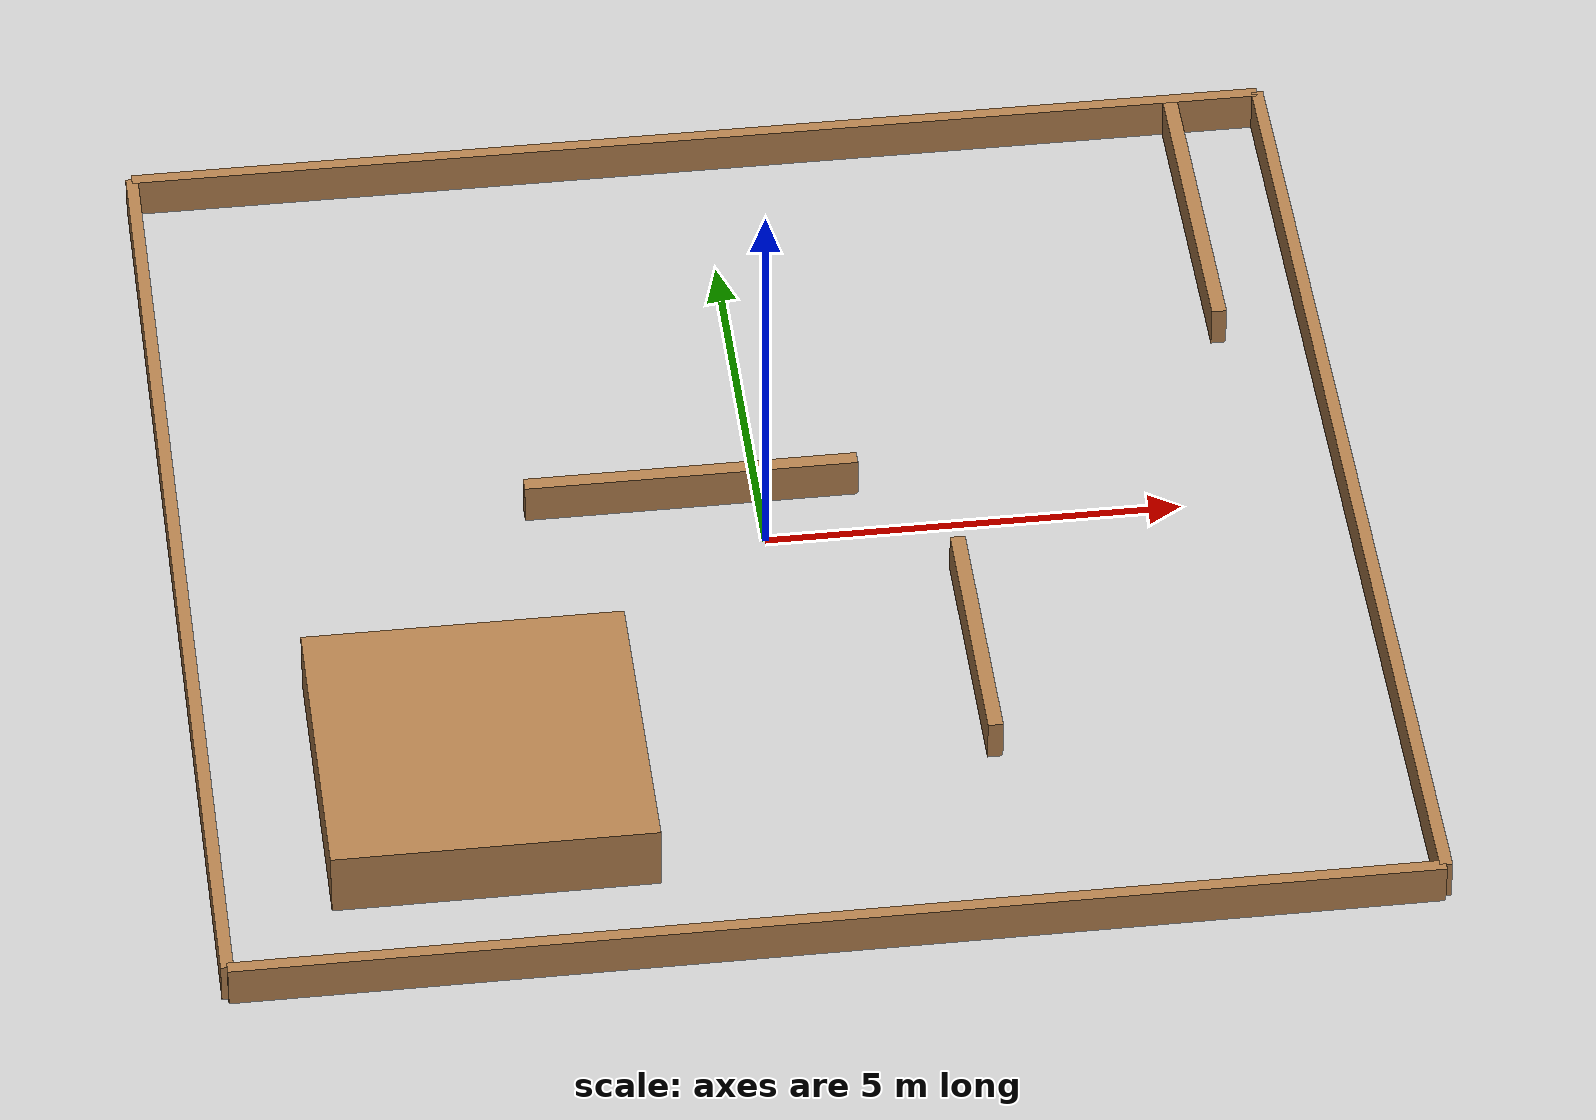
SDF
<sdf version='1.7'>
  <world name='default'>
    <light name='sun' type='directional'>
      <cast_shadows>1</cast_shadows>
      <pose>0 0 10 0 0 0</pose>
      <diffuse>0.8 0.8 0.8 1</diffuse>
      <specular>0.2 0.2 0.2 1</specular>
      <attenuation>
        <range>1000</range>
        <constant>0.9</constant>
        <linear>0.01</linear>
        <quadratic>0.001</quadratic>
      </attenuation>
      <direction>-0.5 0.1 -0.9</direction>
    </light>

    <gravity>0 0 -9.8</gravity>
    <atmosphere type='adiabatic'/>
    <physics type='ode'>
      <max_step_size>0.001</max_step_size>
      <real_time_factor>1</real_time_factor>
      <real_time_update_rate>1000</real_time_update_rate>
    </physics>

    <scene>
      <ambient>0.4 0.4 0.4 1</ambient>
      <background>0.7 0.7 0.7 1</background>
      <shadows>1</shadows>
    </scene>

    <model name='ground_plane'>
      <static>1</static>
      <link name='link'>
        <collision name='collision'>
          <geometry>
            <plane>
              <normal>0 0 1</normal>
              <size>100 100</size>
            </plane>
          </geometry>
        </collision>
        <visual name='visual'>
          <geometry>
            <plane>
              <normal>0 0 1</normal>
              <size>100 100</size>
            </plane>
          </geometry>
          <material>
            <script>
              <uri>file://media/materials/scripts/gazebo.material</uri>
              <name>Gazebo/Grey</name>
            </script>
          </material>
        </visual>
      </link>
    </model>

    <model name='small_plaza'>
      <static>1</static>

      <!-- Outer boundary: roughly 14m x 14m -->
      <link name='wall_west'>
        <pose>-7 0 0 0 0 1.5708</pose>
        <collision name='collision'>
          <geometry><box><size>14 0.15 0.5</size></box></geometry>
        </collision>
        <visual name='visual'>
          <pose>0 0 0.25 0 0 0</pose>
          <geometry><box><size>14 0.15 0.5</size></box></geometry>
          <material><script><uri>file://media/materials/scripts/gazebo.material</uri><name>Gazebo/Wood</name></script></material>
        </visual>
      </link>

      <link name='wall_east'>
        <pose>7 0 0 0 0 1.5708</pose>
        <collision name='collision'>
          <geometry><box><size>14 0.15 0.5</size></box></geometry>
        </collision>
        <visual name='visual'>
          <pose>0 0 0.25 0 0 0</pose>
          <geometry><box><size>14 0.15 0.5</size></box></geometry>
          <material><script><uri>file://media/materials/scripts/gazebo.material</uri><name>Gazebo/Wood</name></script></material>
        </visual>
      </link>

      <link name='wall_north'>
        <pose>0 7 0 0 0 0</pose>
        <collision name='collision'>
          <geometry><box><size>14 0.15 0.5</size></box></geometry>
        </collision>
        <visual name='visual'>
          <pose>0 0 0.25 0 0 0</pose>
          <geometry><box><size>14 0.15 0.5</size></box></geometry>
          <material><script><uri>file://media/materials/scripts/gazebo.material</uri><name>Gazebo/Wood</name></script></material>
        </visual>
      </link>

      <link name='wall_south'>
        <pose>0 -7 0 0 0 0</pose>
        <collision name='collision'>
          <geometry><box><size>14 0.15 0.5</size></box></geometry>
        </collision>
        <visual name='visual'>
          <pose>0 0 0.25 0 0 0</pose>
          <geometry><box><size>14 0.15 0.5</size></box></geometry>
          <material><script><uri>file://media/materials/scripts/gazebo.material</uri><name>Gazebo/Wood</name></script></material>
        </visual>
      </link>

      <!-- A couple of smaller internal obstacles -->
      <link name='center_bar'>
        <pose>-0.8 0.8 0 0 0 0</pose>
        <collision name='collision'>
          <geometry><box><size>4.0 0.18 0.5</size></box></geometry>
        </collision>
        <visual name='visual'>
          <pose>0 0 0.25 0 0 0</pose>
          <geometry><box><size>4.0 0.18 0.5</size></box></geometry>
          <material><script><uri>file://media/materials/scripts/gazebo.material</uri><name>Gazebo/Wood</name></script></material>
        </visual>
      </link>

      <link name='south_vertical'>
        <pose>2.2 -2.4 0 0 0 1.5708</pose>
        <collision name='collision'>
          <geometry><box><size>3.3 0.18 0.5</size></box></geometry>
        </collision>
        <visual name='visual'>
          <pose>0 0 0.25 0 0 0</pose>
          <geometry><box><size>3.3 0.18 0.5</size></box></geometry>
          <material><script><uri>file://media/materials/scripts/gazebo.material</uri><name>Gazebo/Wood</name></script></material>
        </visual>
      </link>

      <!-- Large corner block obstacle -->
      <link name='corner_block_sw'>
        <pose>-3.8 -3.8 0 0 0 0</pose>
        <collision name='collision'>
          <geometry><box><size>3.8 3.8 0.8</size></box></geometry>
        </collision>
        <visual name='visual'>
          <pose>0 0 0.4 0 0 0</pose>
          <geometry><box><size>3.8 3.8 0.8</size></box></geometry>
          <material><script><uri>file://media/materials/scripts/gazebo.material</uri><name>Gazebo/Wood</name></script></material>
        </visual>
      </link>

      <!-- Opposite-corner corridor wall forming a 1.0 m corridor to the east wall -->
      <link name='corner_corridor_ne'>
        <!-- Long side parallel to east boundary (x = 7), short side flush at the top.
             Approx 1.0 m gap between this wall and the east perimeter wall. -->
        <pose>5.9 4.925 0 0 0 1.5708</pose>
        <collision name='collision'>
          <geometry><box><size>4.0 0.18 0.5</size></box></geometry>
        </collision>
        <visual name='visual'>
          <pose>0 0 0.25 0 0 0</pose>
          <geometry><box><size>4.0 0.18 0.5</size></box></geometry>
          <material><script><uri>file://media/materials/scripts/gazebo.material</uri><name>Gazebo/Wood</name></script></material>
        </visual>
      </link>
    </model>

    <gui fullscreen='0'>
      <camera name='user_camera'>
        <pose>-10 12 9 0 0.55 -1.0</pose>
        <view_controller>orbit</view_controller>
        <projection_type>perspective</projection_type>
      </camera>
    </gui>
  </world>
</sdf>
